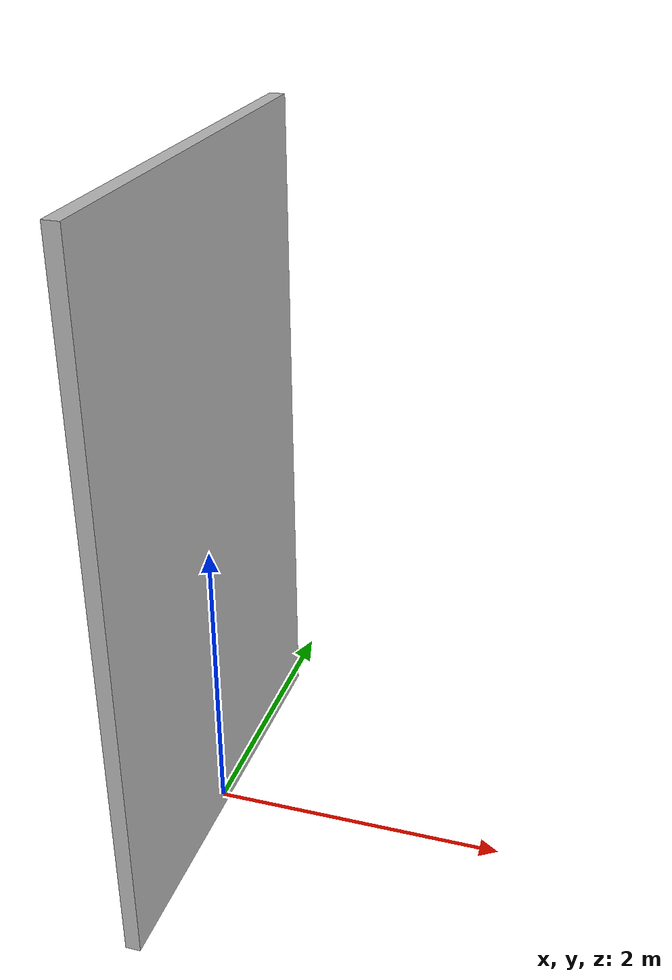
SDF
<?xml version="1.0" ?>

<sdf version="1.5">
<model name='wood_10_300_460'>
      <static>1</static>
      <link name="link">
        <pose>0 0 2.3 0 0 0</pose>

        <visual name="visual">
          <geometry>
            <box>
              <size>0.1 3.0 4.6</size>
            </box>
          </geometry>
          <material>
            <script>
              <uri>model:///home/stibipet/mrs_workspace/src/radiation_nodes/gazebo_rad_obstacle/gazebo_models/materials/scripts</uri>
              <uri>model:///home/stibipet/mrs_workspace/src/radiation_nodes/gazebo_rad_obstacle/gazebo_models/materials/textures/</uri>
              <name>wood/Image</name>
            </script>
          </material>
        </visual>

      </link>

      <plugin name='wood' filename='libgazebo_rad_obstacle.so'>
        <depth>0.1</depth>
        <width>3.0</width>
        <height>4.6</height>
        <material>wood</material>
        <density>0.7</density> <!-- g/cm^3 -->
        <mac60kev>0.1907</mac60kev> <!-- cm^2/g -->
        <mac600kev>0.0807</mac600kev> <!-- cm^2/g -->
      </plugin>

    </model>
  </sdf>
